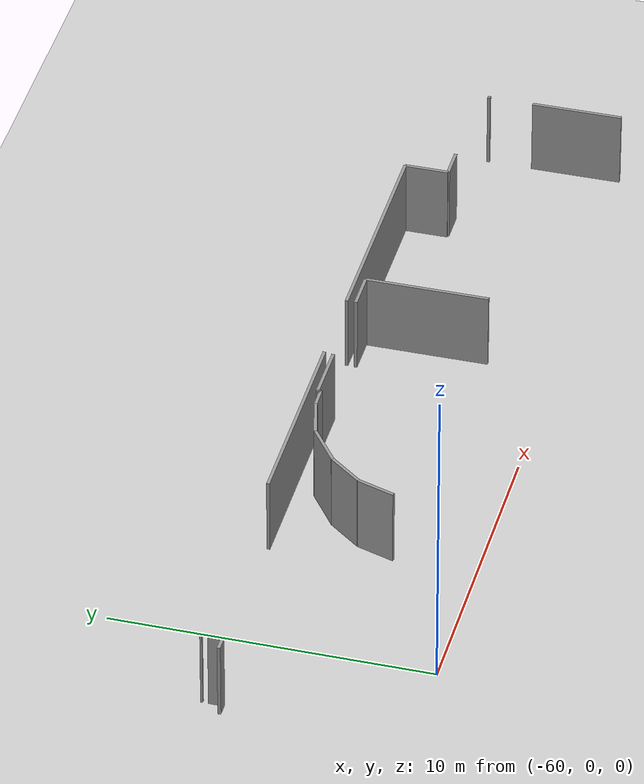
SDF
<sdf version="1.6">
 <world name="default">
  <model name="ground_plane">
   <static>1</static>
   <link name="link">
    <collision name="collision">
     <geometry><plane><normal>0 0 1</normal><size>100 100</size></plane></geometry>
     <surface><friction><ode><mu>100</mu><mu2>50</mu2></ode></friction></surface>
    </collision>
    <visual name="visual">
     <cast_shadows>0</cast_shadows>
     <geometry><plane><normal>0 0 1</normal><size>100 100</size></plane></geometry>
     <material>
      <script><uri>file://media/materials/scripts/gazebo.material</uri><name>Gazebo/Grey</name></script>
     </material>
    </visual>
   </link>
  </model>
  <model name="0510032218_A-40">
   <static>1</static>
   <link name="Wall_6">
    <collision name="Wall_6_Collision">
     <geometry><box><size>0.0691777996382 0.1 2.5</size></box></geometry>
     <pose>0.0345888998191 0 1.25 0 0 0</pose>
    </collision>
    <visual name="Wall_6_Visual">
     <pose>0.0345888998191 0 1.25 0 0 0</pose>
     <geometry><box><size>0.0691777996382 0.1 2.5</size></box></geometry>
     <material>
      <script><uri>file://media/materials/scripts/gazebo.material</uri><name>Gazebo/Grey</name></script>
      <ambient>1 1 1 1</ambient>
     </material>
    </visual>
    <pose>11.902605274 -43.4868149653 0 0 0 1.57079632679</pose>
   </link>
   <link name="Wall_33">
    <collision name="Wall_33_Collision">
     <geometry><box><size>0.971789420239 0.1 2.5</size></box></geometry>
     <pose>0.48589471012 0 1.25 0 0 0</pose>
    </collision>
    <visual name="Wall_33_Visual">
     <pose>0.48589471012 0 1.25 0 0 0</pose>
     <geometry><box><size>0.971789420239 0.1 2.5</size></box></geometry>
     <material>
      <script><uri>file://media/materials/scripts/gazebo.material</uri><name>Gazebo/Grey</name></script>
      <ambient>1 1 1 1</ambient>
     </material>
    </visual>
    <pose>36.4382572272 -44.8471424491 0 0 0 3.14159265359</pose>
   </link>
   <link name="Wall_34">
    <collision name="Wall_34_Collision">
     <geometry><box><size>1.37771713261 0.1 2.5</size></box></geometry>
     <pose>0.688858566306 0 1.25 0 0 0</pose>
    </collision>
    <visual name="Wall_34_Visual">
     <pose>0.688858566306 0 1.25 0 0 0</pose>
     <geometry><box><size>1.37771713261 0.1 2.5</size></box></geometry>
     <material>
      <script><uri>file://media/materials/scripts/gazebo.material</uri><name>Gazebo/Grey</name></script>
      <ambient>1 1 1 1</ambient>
     </material>
    </visual>
    <pose>35.4664678069 -44.8471424491 0 0 0 1.57079632679</pose>
   </link>
   <link name="Wall_35">
    <collision name="Wall_35_Collision">
     <geometry><box><size>7.17532446927 0.1 2.5</size></box></geometry>
     <pose>3.58766223463 0 1.25 0 0 0</pose>
    </collision>
    <visual name="Wall_35_Visual">
     <pose>3.58766223463 0 1.25 0 0 0</pose>
     <geometry><box><size>7.17532446927 0.1 2.5</size></box></geometry>
     <material>
      <script><uri>file://media/materials/scripts/gazebo.material</uri><name>Gazebo/Grey</name></script>
      <ambient>1 1 1 1</ambient>
     </material>
    </visual>
    <pose>35.4664678069 -43.4694253165 0 0 0 3.14159265359</pose>
   </link>
   <link name="Wall_36">
    <collision name="Wall_36_Collision">
     <geometry><box><size>6.56239412535 0.1 2.5</size></box></geometry>
     <pose>3.28119706268 0 1.25 0 0 0</pose>
    </collision>
    <visual name="Wall_36_Visual">
     <pose>3.28119706268 0 1.25 0 0 0</pose>
     <geometry><box><size>6.56239412535 0.1 2.5</size></box></geometry>
     <material>
      <script><uri>file://media/materials/scripts/gazebo.material</uri><name>Gazebo/Grey</name></script>
      <ambient>1 1 1 1</ambient>
     </material>
    </visual>
    <pose>25.6754609209 -43.4694253165 0 0 0 -3.1389427565</pose>
   </link>
   <link name="Wall_369">
    <collision name="Wall_369_Collision">
     <geometry><box><size>0.433218037001 0.1 2.5</size></box></geometry>
     <pose>0.2166090185 0 1.25 0 0 0</pose>
    </collision>
    <visual name="Wall_369_Visual">
     <pose>0.2166090185 0 1.25 0 0 0</pose>
     <geometry><box><size>0.433218037001 0.1 2.5</size></box></geometry>
     <material>
      <script><uri>file://media/materials/scripts/gazebo.material</uri><name>Gazebo/Grey</name></script>
      <ambient>1 1 1 1</ambient>
     </material>
    </visual>
    <pose>11.902097547 -43.6537302066 0 0 0 -1.57079632679</pose>
   </link>
   <link name="Wall_370">
    <collision name="Wall_370_Collision">
     <geometry><box><size>0.425602132453 0.1 2.5</size></box></geometry>
     <pose>0.212801066227 0 1.25 0 0 0</pose>
    </collision>
    <visual name="Wall_370_Visual">
     <pose>0.212801066227 0 1.25 0 0 0</pose>
     <geometry><box><size>0.425602132453 0.1 2.5</size></box></geometry>
     <material>
      <script><uri>file://media/materials/scripts/gazebo.material</uri><name>Gazebo/Grey</name></script>
      <ambient>1 1 1 1</ambient>
     </material>
    </visual>
    <pose>11.902097547 -44.0869482436 0 0 0 3.14159265359</pose>
   </link>
   <link name="Wall_382">
    <collision name="Wall_382_Collision">
     <geometry><box><size>1.23550777055 0.1 2.5</size></box></geometry>
     <pose>0.617753885277 0 1.25 0 0 0</pose>
    </collision>
    <visual name="Wall_382_Visual">
     <pose>0.617753885277 0 1.25 0 0 0</pose>
     <geometry><box><size>1.23550777055 0.1 2.5</size></box></geometry>
     <material>
      <script><uri>file://media/materials/scripts/gazebo.material</uri><name>Gazebo/Grey</name></script>
      <ambient>1 1 1 1</ambient>
     </material>
    </visual>
    <pose>19.5690286548 -47.1981721829 0 0 0 1.25456878317</pose>
   </link>
   <link name="Wall_383">
    <collision name="Wall_383_Collision">
     <geometry><box><size>1.26580766309 0.1 2.5</size></box></geometry>
     <pose>0.632903831544 0 1.25 0 0 0</pose>
    </collision>
    <visual name="Wall_383_Visual">
     <pose>0.632903831544 0 1.25 0 0 0</pose>
     <geometry><box><size>1.26580766309 0.1 2.5</size></box></geometry>
     <material>
      <script><uri>file://media/materials/scripts/gazebo.material</uri><name>Gazebo/Grey</name></script>
      <ambient>1 1 1 1</ambient>
     </material>
    </visual>
    <pose>19.9532510393 -46.0239266335 0 0 0 0.902163087427</pose>
   </link>
   <link name="Wall_384">
    <collision name="Wall_384_Collision">
     <geometry><box><size>1.43922856868 0.1 2.5</size></box></geometry>
     <pose>0.71961428434 0 1.25 0 0 0</pose>
    </collision>
    <visual name="Wall_384_Visual">
     <pose>0.71961428434 0 1.25 0 0 0</pose>
     <geometry><box><size>1.43922856868 0.1 2.5</size></box></geometry>
     <material>
      <script><uri>file://media/materials/scripts/gazebo.material</uri><name>Gazebo/Grey</name></script>
      <ambient>1 1 1 1</ambient>
     </material>
    </visual>
    <pose>20.7379430711 -45.0306857487 0 0 0 0.622915107425</pose>
   </link>
   <link name="Wall_385">
    <collision name="Wall_385_Collision">
     <geometry><box><size>1.30295820052 0.1 2.5</size></box></geometry>
     <pose>0.651479100258 0 1.25 0 0 0</pose>
    </collision>
    <visual name="Wall_385_Visual">
     <pose>0.651479100258 0 1.25 0 0 0</pose>
     <geometry><box><size>1.30295820052 0.1 2.5</size></box></geometry>
     <material>
      <script><uri>file://media/materials/scripts/gazebo.material</uri><name>Gazebo/Grey</name></script>
      <ambient>1 1 1 1</ambient>
     </material>
    </visual>
    <pose>21.9068574874 -44.1910322724 0 0 0 0.25114544458</pose>
   </link>
   <link name="Wall_386">
    <collision name="Wall_386_Collision">
     <geometry><box><size>0.620281087666 0.1 2.5</size></box></geometry>
     <pose>0.310140543833 0 1.25 0 0 0</pose>
    </collision>
    <visual name="Wall_386_Visual">
     <pose>0.310140543833 0 1.25 0 0 0</pose>
     <geometry><box><size>0.620281087666 0.1 2.5</size></box></geometry>
     <material>
      <script><uri>file://media/materials/scripts/gazebo.material</uri><name>Gazebo/Grey</name></script>
      <ambient>1 1 1 1</ambient>
     </material>
    </visual>
    <pose>23.1689398026 -43.8672293974 0 0 0 0.0266057982089</pose>
   </link>
   <link name="Wall_387">
    <collision name="Wall_387_Collision">
     <geometry><box><size>0.0931678989623 0.1 2.5</size></box></geometry>
     <pose>0.0465839494812 0 1.25 0 0 0</pose>
    </collision>
    <visual name="Wall_387_Visual">
     <pose>0.0465839494812 0 1.25 0 0 0</pose>
     <geometry><box><size>0.0931678989623 0.1 2.5</size></box></geometry>
     <material>
      <script><uri>file://media/materials/scripts/gazebo.material</uri><name>Gazebo/Grey</name></script>
      <ambient>1 1 1 1</ambient>
     </material>
    </visual>
    <pose>23.7890013645 -43.8507282709 0 0 0 1.57079632679</pose>
   </link>
   <link name="Wall_388">
    <collision name="Wall_388_Collision">
     <geometry><box><size>1.83835242598 0.1 2.5</size></box></geometry>
     <pose>0.919176212991 0 1.25 0 0 0</pose>
    </collision>
    <visual name="Wall_388_Visual">
     <pose>0.919176212991 0 1.25 0 0 0</pose>
     <geometry><box><size>1.83835242598 0.1 2.5</size></box></geometry>
     <material>
      <script><uri>file://media/materials/scripts/gazebo.material</uri><name>Gazebo/Grey</name></script>
      <ambient>1 1 1 1</ambient>
     </material>
    </visual>
    <pose>23.7890013645 -43.7575603719 0 0 0 0.0</pose>
   </link>
   <link name="Wall_389">
    <collision name="Wall_389_Collision">
     <geometry><box><size>1.20940564212 0.1 2.5</size></box></geometry>
     <pose>0.604702821058 0 1.25 0 0 0</pose>
    </collision>
    <visual name="Wall_389_Visual">
     <pose>0.604702821058 0 1.25 0 0 0</pose>
     <geometry><box><size>1.20940564212 0.1 2.5</size></box></geometry>
     <material>
      <script><uri>file://media/materials/scripts/gazebo.material</uri><name>Gazebo/Grey</name></script>
      <ambient>1 1 1 1</ambient>
     </material>
    </visual>
    <pose>28.286066068 -43.7575603719 0 0 0 0.0</pose>
   </link>
   <link name="Wall_390">
    <collision name="Wall_390_Collision">
     <geometry><box><size>3.87344905277 0.1 2.5</size></box></geometry>
     <pose>1.93672452639 0 1.25 0 0 0</pose>
    </collision>
    <visual name="Wall_390_Visual">
     <pose>1.93672452639 0 1.25 0 0 0</pose>
     <geometry><box><size>3.87344905277 0.1 2.5</size></box></geometry>
     <material>
      <script><uri>file://media/materials/scripts/gazebo.material</uri><name>Gazebo/Grey</name></script>
      <ambient>1 1 1 1</ambient>
     </material>
    </visual>
    <pose>29.4954717101 -43.7575603719 0 0 0 -1.57079632679</pose>
   </link>
   <link name="Wall_403">
    <collision name="Wall_403_Collision">
     <geometry><box><size>0.0938025576746 0.1 2.5</size></box></geometry>
     <pose>0.0469012788373 0 1.25 0 0 0</pose>
    </collision>
    <visual name="Wall_403_Visual">
     <pose>0.0469012788373 0 1.25 0 0 0</pose>
     <geometry><box><size>0.0938025576746 0.1 2.5</size></box></geometry>
     <material>
      <script><uri>file://media/materials/scripts/gazebo.material</uri><name>Gazebo/Grey</name></script>
      <ambient>1 1 1 1</ambient>
     </material>
    </visual>
    <pose>39.6373179323 -45.0850125345 0 0 0 -1.57079632679</pose>
   </link>
   <link name="Wall_404">
    <collision name="Wall_404_Collision">
     <geometry><box><size>2.85939136229 0.1 2.5</size></box></geometry>
     <pose>1.42969568115 0 1.25 0 0 0</pose>
    </collision>
    <visual name="Wall_404_Visual">
     <pose>1.42969568115 0 1.25 0 0 0</pose>
     <geometry><box><size>2.85939136229 0.1 2.5</size></box></geometry>
     <material>
      <script><uri>file://media/materials/scripts/gazebo.material</uri><name>Gazebo/Grey</name></script>
      <ambient>1 1 1 1</ambient>
     </material>
    </visual>
    <pose>39.6373179323 -46.5420620062 0 0 0 -1.57079632679</pose>
   </link>
   <pose>-74.8 49.7517929109 0 0 0 0</pose>
  </model>
 </world>
</sdf>
